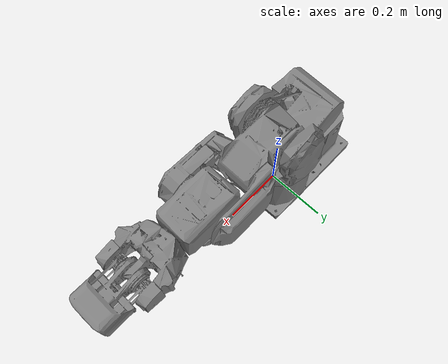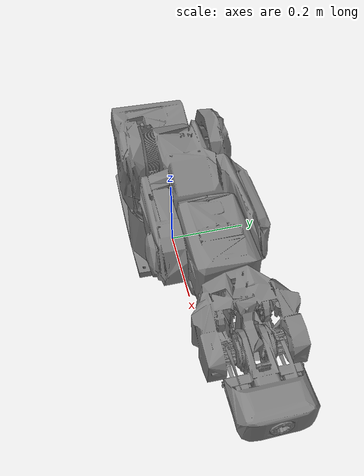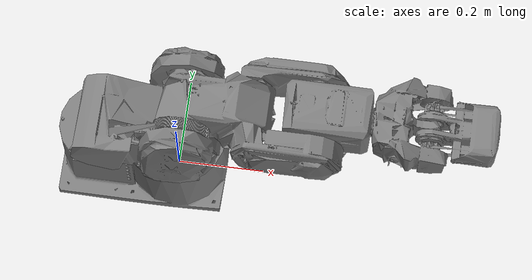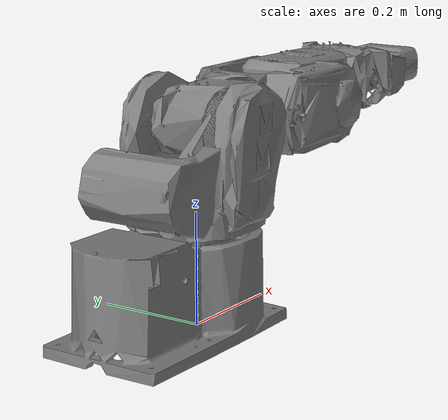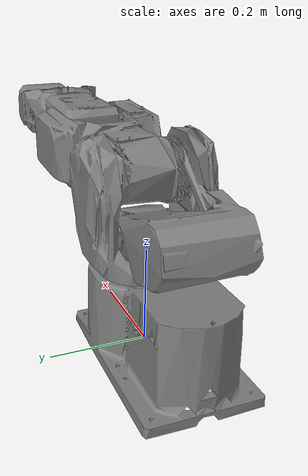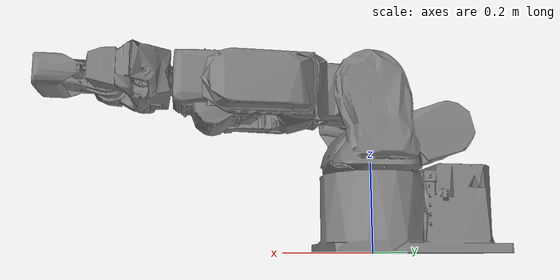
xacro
<?xml version="1.0"?>
<robot xmlns:xacro="http://www.ros.org/wiki/xacro" name="robotarm">

  <xacro:include filename="$(find robotarm_description)/urdf/robotarm_geometry.xacro" />
  <xacro:include filename="$(find robotarm_description)/urdf/robotarm.ros2_control.xacro" />

  <xacro:robotarm_geometry />

  <xacro:robotarm_ros2_control name="MoteusHardwareSystem" use_hardware="$(arg use_hardware)" />

</robot>

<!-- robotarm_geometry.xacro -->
<robot xmlns:xacro="http://www.ros.org/wiki/xacro">
    <xacro:macro name="robotarm_geometry">
        <link name="base">
            <visual name="base_visual">
                <origin xyz="0 0 0" rpy="0 0 0"/>
                <geometry>
                    <mesh filename="package://robotarm_description/meshes/base.stl"/>
                </geometry>
                <material name="base-material">
                    <color rgba="0.5 0.5 0.5 1"/>
                </material>
            </visual>
            <collision name="base_collision_0">
                <origin xyz="0 0 0" rpy="0 0 0"/>
                <geometry>
                    <mesh filename="package://robotarm_description/meshes/collision/base_collision_0.stl"/>
                </geometry>
            </collision>
            <collision name="base_collision_1">
                <origin xyz="0 0 0" rpy="0 0 0"/>
                <geometry>
                    <mesh filename="package://robotarm_description/meshes/collision/base_collision_1.stl"/>
                </geometry>
            </collision>
            <collision name="base_collision_2">
                <origin xyz="0 0 0" rpy="0 0 0"/>
                <geometry>
                    <mesh filename="package://robotarm_description/meshes/collision/base_collision_2.stl"/>
                </geometry>
            </collision>
            <collision name="base_collision_3">
                <origin xyz="0 0 0" rpy="0 0 0"/>
                <geometry>
                    <mesh filename="package://robotarm_description/meshes/collision/base_collision_3.stl"/>
                </geometry>
            </collision>
            <collision name="base_collision_4">
                <origin xyz="0 0 0" rpy="0 0 0"/>
                <geometry>
                    <mesh filename="package://robotarm_description/meshes/collision/base_collision_4.stl"/>
                </geometry>
            </collision>
            <collision name="base_collision_5">
                <origin xyz="0 0 0" rpy="0 0 0"/>
                <geometry>
                    <mesh filename="package://robotarm_description/meshes/collision/base_collision_5.stl"/>
                </geometry>
            </collision>
            <collision name="base_collision_6">
                <origin xyz="0 0 0" rpy="0 0 0"/>
                <geometry>
                    <mesh filename="package://robotarm_description/meshes/collision/base_collision_6.stl"/>
                </geometry>
            </collision>
            <collision name="base_collision_7">
                <origin xyz="0 0 0" rpy="0 0 0"/>
                <geometry>
                    <mesh filename="package://robotarm_description/meshes/collision/base_collision_7.stl"/>
                </geometry>
            </collision>
            <collision name="base_collision_8">
                <origin xyz="0 0 0" rpy="0 0 0"/>
                <geometry>
                    <mesh filename="package://robotarm_description/meshes/collision/base_collision_8.stl"/>
                </geometry>
            </collision>
            <collision name="base_collision_9">
                <origin xyz="0 0 0" rpy="0 0 0"/>
                <geometry>
                    <mesh filename="package://robotarm_description/meshes/collision/base_collision_9.stl"/>
                </geometry>
            </collision>
            <collision name="base_collision_10">
                <origin xyz="0 0 0" rpy="0 0 0"/>
                <geometry>
                    <mesh filename="package://robotarm_description/meshes/collision/base_collision_10.stl"/>
                </geometry>
            </collision>
            <collision name="base_collision_11">
                <origin xyz="0 0 0" rpy="0 0 0"/>
                <geometry>
                    <mesh filename="package://robotarm_description/meshes/collision/base_collision_11.stl"/>
                </geometry>
            </collision>
            <collision name="base_collision_12">
                <origin xyz="0 0 0" rpy="0 0 0"/>
                <geometry>
                    <mesh filename="package://robotarm_description/meshes/collision/base_collision_12.stl"/>
                </geometry>
            </collision>
            <collision name="base_collision_13">
                <origin xyz="0 0 0" rpy="0 0 0"/>
                <geometry>
                    <mesh filename="package://robotarm_description/meshes/collision/base_collision_13.stl"/>
                </geometry>
            </collision>
            <collision name="base_collision_14">
                <origin xyz="0 0 0" rpy="0 0 0"/>
                <geometry>
                    <mesh filename="package://robotarm_description/meshes/collision/base_collision_14.stl"/>
                </geometry>
            </collision>
            <collision name="base_collision_15">
                <origin xyz="0 0 0" rpy="0 0 0"/>
                <geometry>
                    <mesh filename="package://robotarm_description/meshes/collision/base_collision_15.stl"/>
                </geometry>
            </collision>
            <inertial>
                <mass value="3.4827204"/>
                <inertia ixx="0.018868745" iyy="0.04742671" izz="0.049264396" ixy="7.1166324e-05" ixz="0.0045183113" iyz="-9.5548728e-05"/>
                <origin xyz="-0.076932274 0.00034950377 0.093560363" rpy="0 0 0"/>
            </inertial>
        </link>
        <link name="stage1">
            <visual name="stage1_visual">
                <origin xyz="0 0 0" rpy="0 0 0"/>
                <geometry>
                    <mesh filename="package://robotarm_description/meshes/stage1.stl"/>
                </geometry>
                <material name="stage1-material">
                    <color rgba="0.5 0.5 0.5 1"/>
                </material>
            </visual>
            <collision name="stage1_collision_0">
                <origin xyz="0 0 0" rpy="0 0 0"/>
                <geometry>
                    <mesh filename="package://robotarm_description/meshes/collision/stage1_collision_0.stl"/>
                </geometry>
            </collision>
            <collision name="stage1_collision_1">
                <origin xyz="0 0 0" rpy="0 0 0"/>
                <geometry>
                    <mesh filename="package://robotarm_description/meshes/collision/stage1_collision_1.stl"/>
                </geometry>
            </collision>
            <collision name="stage1_collision_2">
                <origin xyz="0 0 0" rpy="0 0 0"/>
                <geometry>
                    <mesh filename="package://robotarm_description/meshes/collision/stage1_collision_2.stl"/>
                </geometry>
            </collision>
            <collision name="stage1_collision_3">
                <origin xyz="0 0 0" rpy="0 0 0"/>
                <geometry>
                    <mesh filename="package://robotarm_description/meshes/collision/stage1_collision_3.stl"/>
                </geometry>
            </collision>
            <collision name="stage1_collision_4">
                <origin xyz="0 0 0" rpy="0 0 0"/>
                <geometry>
                    <mesh filename="package://robotarm_description/meshes/collision/stage1_collision_4.stl"/>
                </geometry>
            </collision>
            <collision name="stage1_collision_5">
                <origin xyz="0 0 0" rpy="0 0 0"/>
                <geometry>
                    <mesh filename="package://robotarm_description/meshes/collision/stage1_collision_5.stl"/>
                </geometry>
            </collision>
            <collision name="stage1_collision_6">
                <origin xyz="0 0 0" rpy="0 0 0"/>
                <geometry>
                    <mesh filename="package://robotarm_description/meshes/collision/stage1_collision_6.stl"/>
                </geometry>
            </collision>
            <collision name="stage1_collision_7">
                <origin xyz="0 0 0" rpy="0 0 0"/>
                <geometry>
                    <mesh filename="package://robotarm_description/meshes/collision/stage1_collision_7.stl"/>
                </geometry>
            </collision>
            <collision name="stage1_collision_8">
                <origin xyz="0 0 0" rpy="0 0 0"/>
                <geometry>
                    <mesh filename="package://robotarm_description/meshes/collision/stage1_collision_8.stl"/>
                </geometry>
            </collision>
            <collision name="stage1_collision_9">
                <origin xyz="0 0 0" rpy="0 0 0"/>
                <geometry>
                    <mesh filename="package://robotarm_description/meshes/collision/stage1_collision_9.stl"/>
                </geometry>
            </collision>
            <collision name="stage1_collision_10">
                <origin xyz="0 0 0" rpy="0 0 0"/>
                <geometry>
                    <mesh filename="package://robotarm_description/meshes/collision/stage1_collision_10.stl"/>
                </geometry>
            </collision>
            <collision name="stage1_collision_11">
                <origin xyz="0 0 0" rpy="0 0 0"/>
                <geometry>
                    <mesh filename="package://robotarm_description/meshes/collision/stage1_collision_11.stl"/>
                </geometry>
            </collision>
            <collision name="stage1_collision_12">
                <origin xyz="0 0 0" rpy="0 0 0"/>
                <geometry>
                    <mesh filename="package://robotarm_description/meshes/collision/stage1_collision_12.stl"/>
                </geometry>
            </collision>
            <collision name="stage1_collision_13">
                <origin xyz="0 0 0" rpy="0 0 0"/>
                <geometry>
                    <mesh filename="package://robotarm_description/meshes/collision/stage1_collision_13.stl"/>
                </geometry>
            </collision>
            <collision name="stage1_collision_14">
                <origin xyz="0 0 0" rpy="0 0 0"/>
                <geometry>
                    <mesh filename="package://robotarm_description/meshes/collision/stage1_collision_14.stl"/>
                </geometry>
            </collision>
            <collision name="stage1_collision_15">
                <origin xyz="0 0 0" rpy="0 0 0"/>
                <geometry>
                    <mesh filename="package://robotarm_description/meshes/collision/stage1_collision_15.stl"/>
                </geometry>
            </collision>
            <inertial>
                <mass value="4.1295223"/>
                <inertia ixx="0.04711987" iyy="0.052758273" izz="0.038779356" ixy="-0.0034076629" ixz="0.0013026889" iyz="0.00137008"/>
                <origin xyz="-0.026966509 -0.0076387808 0.24365317" rpy="0 0 0"/>
            </inertial>
        </link>
        <link name="stage2">
            <visual name="stage2_visual">
                <origin xyz="0 0 0" rpy="0 0 0"/>
                <geometry>
                    <mesh filename="package://robotarm_description/meshes/stage2.stl"/>
                </geometry>
                <material name="stage2-material">
                    <color rgba="0.5 0.5 0.5 1"/>
                </material>
            </visual>
            <collision name="stage2_collision_0">
                <origin xyz="0 0 0" rpy="0 0 0"/>
                <geometry>
                    <mesh filename="package://robotarm_description/meshes/collision/stage2_collision_0.stl"/>
                </geometry>
            </collision>
            <collision name="stage2_collision_1">
                <origin xyz="0 0 0" rpy="0 0 0"/>
                <geometry>
                    <mesh filename="package://robotarm_description/meshes/collision/stage2_collision_1.stl"/>
                </geometry>
            </collision>
            <collision name="stage2_collision_2">
                <origin xyz="0 0 0" rpy="0 0 0"/>
                <geometry>
                    <mesh filename="package://robotarm_description/meshes/collision/stage2_collision_2.stl"/>
                </geometry>
            </collision>
            <collision name="stage2_collision_3">
                <origin xyz="0 0 0" rpy="0 0 0"/>
                <geometry>
                    <mesh filename="package://robotarm_description/meshes/collision/stage2_collision_3.stl"/>
                </geometry>
            </collision>
            <collision name="stage2_collision_4">
                <origin xyz="0 0 0" rpy="0 0 0"/>
                <geometry>
                    <mesh filename="package://robotarm_description/meshes/collision/stage2_collision_4.stl"/>
                </geometry>
            </collision>
            <collision name="stage2_collision_5">
                <origin xyz="0 0 0" rpy="0 0 0"/>
                <geometry>
                    <mesh filename="package://robotarm_description/meshes/collision/stage2_collision_5.stl"/>
                </geometry>
            </collision>
            <collision name="stage2_collision_6">
                <origin xyz="0 0 0" rpy="0 0 0"/>
                <geometry>
                    <mesh filename="package://robotarm_description/meshes/collision/stage2_collision_6.stl"/>
                </geometry>
            </collision>
            <collision name="stage2_collision_7">
                <origin xyz="0 0 0" rpy="0 0 0"/>
                <geometry>
                    <mesh filename="package://robotarm_description/meshes/collision/stage2_collision_7.stl"/>
                </geometry>
            </collision>
            <collision name="stage2_collision_8">
                <origin xyz="0 0 0" rpy="0 0 0"/>
                <geometry>
                    <mesh filename="package://robotarm_description/meshes/collision/stage2_collision_8.stl"/>
                </geometry>
            </collision>
            <collision name="stage2_collision_9">
                <origin xyz="0 0 0" rpy="0 0 0"/>
                <geometry>
                    <mesh filename="package://robotarm_description/meshes/collision/stage2_collision_9.stl"/>
                </geometry>
            </collision>
            <collision name="stage2_collision_10">
                <origin xyz="0 0 0" rpy="0 0 0"/>
                <geometry>
                    <mesh filename="package://robotarm_description/meshes/collision/stage2_collision_10.stl"/>
                </geometry>
            </collision>
            <collision name="stage2_collision_11">
                <origin xyz="0 0 0" rpy="0 0 0"/>
                <geometry>
                    <mesh filename="package://robotarm_description/meshes/collision/stage2_collision_11.stl"/>
                </geometry>
            </collision>
            <collision name="stage2_collision_12">
                <origin xyz="0 0 0" rpy="0 0 0"/>
                <geometry>
                    <mesh filename="package://robotarm_description/meshes/collision/stage2_collision_12.stl"/>
                </geometry>
            </collision>
            <collision name="stage2_collision_13">
                <origin xyz="0 0 0" rpy="0 0 0"/>
                <geometry>
                    <mesh filename="package://robotarm_description/meshes/collision/stage2_collision_13.stl"/>
                </geometry>
            </collision>
            <collision name="stage2_collision_14">
                <origin xyz="0 0 0" rpy="0 0 0"/>
                <geometry>
                    <mesh filename="package://robotarm_description/meshes/collision/stage2_collision_14.stl"/>
                </geometry>
            </collision>
            <collision name="stage2_collision_15">
                <origin xyz="0 0 0" rpy="0 0 0"/>
                <geometry>
                    <mesh filename="package://robotarm_description/meshes/collision/stage2_collision_15.stl"/>
                </geometry>
            </collision>
            <inertial>
                <mass value="2.7406252"/>
                <inertia ixx="0.015630873" iyy="0.045363405" izz="0.035932694" ixy="0.0002099319" ixz="0.0022474095" iyz="-5.4668965e-05"/>
                <origin xyz="0.11594204 0.00017508737 -0.0030457475" rpy="0 0 0"/>
            </inertial>
        </link>
        <link name="stage3">
            <visual name="stage3_visual">
                <origin xyz="0 0 0" rpy="0 0 0"/>
                <geometry>
                    <mesh filename="package://robotarm_description/meshes/stage3.stl"/>
                </geometry>
                <material name="stage3-material">
                    <color rgba="0.5 0.5 0.5 1"/>
                </material>
            </visual>
            <collision name="stage3_collision_0">
                <origin xyz="0 0 0" rpy="0 0 0"/>
                <geometry>
                    <mesh filename="package://robotarm_description/meshes/collision/stage3_collision_0.stl"/>
                </geometry>
            </collision>
            <collision name="stage3_collision_1">
                <origin xyz="0 0 0" rpy="0 0 0"/>
                <geometry>
                    <mesh filename="package://robotarm_description/meshes/collision/stage3_collision_1.stl"/>
                </geometry>
            </collision>
            <collision name="stage3_collision_2">
                <origin xyz="0 0 0" rpy="0 0 0"/>
                <geometry>
                    <mesh filename="package://robotarm_description/meshes/collision/stage3_collision_2.stl"/>
                </geometry>
            </collision>
            <collision name="stage3_collision_3">
                <origin xyz="0 0 0" rpy="0 0 0"/>
                <geometry>
                    <mesh filename="package://robotarm_description/meshes/collision/stage3_collision_3.stl"/>
                </geometry>
            </collision>
            <collision name="stage3_collision_4">
                <origin xyz="0 0 0" rpy="0 0 0"/>
                <geometry>
                    <mesh filename="package://robotarm_description/meshes/collision/stage3_collision_4.stl"/>
                </geometry>
            </collision>
            <collision name="stage3_collision_5">
                <origin xyz="0 0 0" rpy="0 0 0"/>
                <geometry>
                    <mesh filename="package://robotarm_description/meshes/collision/stage3_collision_5.stl"/>
                </geometry>
            </collision>
            <collision name="stage3_collision_6">
                <origin xyz="0 0 0" rpy="0 0 0"/>
                <geometry>
                    <mesh filename="package://robotarm_description/meshes/collision/stage3_collision_6.stl"/>
                </geometry>
            </collision>
            <collision name="stage3_collision_7">
                <origin xyz="0 0 0" rpy="0 0 0"/>
                <geometry>
                    <mesh filename="package://robotarm_description/meshes/collision/stage3_collision_7.stl"/>
                </geometry>
            </collision>
            <collision name="stage3_collision_8">
                <origin xyz="0 0 0" rpy="0 0 0"/>
                <geometry>
                    <mesh filename="package://robotarm_description/meshes/collision/stage3_collision_8.stl"/>
                </geometry>
            </collision>
            <collision name="stage3_collision_9">
                <origin xyz="0 0 0" rpy="0 0 0"/>
                <geometry>
                    <mesh filename="package://robotarm_description/meshes/collision/stage3_collision_9.stl"/>
                </geometry>
            </collision>
            <collision name="stage3_collision_10">
                <origin xyz="0 0 0" rpy="0 0 0"/>
                <geometry>
                    <mesh filename="package://robotarm_description/meshes/collision/stage3_collision_10.stl"/>
                </geometry>
            </collision>
            <collision name="stage3_collision_11">
                <origin xyz="0 0 0" rpy="0 0 0"/>
                <geometry>
                    <mesh filename="package://robotarm_description/meshes/collision/stage3_collision_11.stl"/>
                </geometry>
            </collision>
            <collision name="stage3_collision_12">
                <origin xyz="0 0 0" rpy="0 0 0"/>
                <geometry>
                    <mesh filename="package://robotarm_description/meshes/collision/stage3_collision_12.stl"/>
                </geometry>
            </collision>
            <collision name="stage3_collision_13">
                <origin xyz="0 0 0" rpy="0 0 0"/>
                <geometry>
                    <mesh filename="package://robotarm_description/meshes/collision/stage3_collision_13.stl"/>
                </geometry>
            </collision>
            <collision name="stage3_collision_14">
                <origin xyz="0 0 0" rpy="0 0 0"/>
                <geometry>
                    <mesh filename="package://robotarm_description/meshes/collision/stage3_collision_14.stl"/>
                </geometry>
            </collision>
            <collision name="stage3_collision_15">
                <origin xyz="0 0 0" rpy="0 0 0"/>
                <geometry>
                    <mesh filename="package://robotarm_description/meshes/collision/stage3_collision_15.stl"/>
                </geometry>
            </collision>
            <inertial>
                <mass value="1.6419615"/>
                <inertia ixx="0.0060097679" iyy="0.0079791439" izz="0.0065231995" ixy="-6.4363026e-05" ixz="-0.00012366796" iyz="3.6235248e-05"/>
                <origin xyz="0.012807948 -0.0037012114 -0.0075414714" rpy="0 0 0"/>
            </inertial>
        </link>
        <link name="stage4">
            <visual name="stage4_visual">
                <origin xyz="0 0 0" rpy="0 0 0"/>
                <geometry>
                    <mesh filename="package://robotarm_description/meshes/stage4.stl"/>
                </geometry>
                <material name="stage4-material">
                    <color rgba="0.5 0.5 0.5 1"/>
                </material>
            </visual>
            <collision name="stage4_collision_0">
                <origin xyz="0 0 0" rpy="0 0 0"/>
                <geometry>
                    <mesh filename="package://robotarm_description/meshes/collision/stage4_collision_0.stl"/>
                </geometry>
            </collision>
            <collision name="stage4_collision_1">
                <origin xyz="0 0 0" rpy="0 0 0"/>
                <geometry>
                    <mesh filename="package://robotarm_description/meshes/collision/stage4_collision_1.stl"/>
                </geometry>
            </collision>
            <collision name="stage4_collision_2">
                <origin xyz="0 0 0" rpy="0 0 0"/>
                <geometry>
                    <mesh filename="package://robotarm_description/meshes/collision/stage4_collision_2.stl"/>
                </geometry>
            </collision>
            <collision name="stage4_collision_3">
                <origin xyz="0 0 0" rpy="0 0 0"/>
                <geometry>
                    <mesh filename="package://robotarm_description/meshes/collision/stage4_collision_3.stl"/>
                </geometry>
            </collision>
            <collision name="stage4_collision_4">
                <origin xyz="0 0 0" rpy="0 0 0"/>
                <geometry>
                    <mesh filename="package://robotarm_description/meshes/collision/stage4_collision_4.stl"/>
                </geometry>
            </collision>
            <collision name="stage4_collision_5">
                <origin xyz="0 0 0" rpy="0 0 0"/>
                <geometry>
                    <mesh filename="package://robotarm_description/meshes/collision/stage4_collision_5.stl"/>
                </geometry>
            </collision>
            <collision name="stage4_collision_6">
                <origin xyz="0 0 0" rpy="0 0 0"/>
                <geometry>
                    <mesh filename="package://robotarm_description/meshes/collision/stage4_collision_6.stl"/>
                </geometry>
            </collision>
            <collision name="stage4_collision_7">
                <origin xyz="0 0 0" rpy="0 0 0"/>
                <geometry>
                    <mesh filename="package://robotarm_description/meshes/collision/stage4_collision_7.stl"/>
                </geometry>
            </collision>
            <collision name="stage4_collision_8">
                <origin xyz="0 0 0" rpy="0 0 0"/>
                <geometry>
                    <mesh filename="package://robotarm_description/meshes/collision/stage4_collision_8.stl"/>
                </geometry>
            </collision>
            <collision name="stage4_collision_9">
                <origin xyz="0 0 0" rpy="0 0 0"/>
                <geometry>
                    <mesh filename="package://robotarm_description/meshes/collision/stage4_collision_9.stl"/>
                </geometry>
            </collision>
            <collision name="stage4_collision_10">
                <origin xyz="0 0 0" rpy="0 0 0"/>
                <geometry>
                    <mesh filename="package://robotarm_description/meshes/collision/stage4_collision_10.stl"/>
                </geometry>
            </collision>
            <collision name="stage4_collision_11">
                <origin xyz="0 0 0" rpy="0 0 0"/>
                <geometry>
                    <mesh filename="package://robotarm_description/meshes/collision/stage4_collision_11.stl"/>
                </geometry>
            </collision>
            <collision name="stage4_collision_12">
                <origin xyz="0 0 0" rpy="0 0 0"/>
                <geometry>
                    <mesh filename="package://robotarm_description/meshes/collision/stage4_collision_12.stl"/>
                </geometry>
            </collision>
            <collision name="stage4_collision_13">
                <origin xyz="0 0 0" rpy="0 0 0"/>
                <geometry>
                    <mesh filename="package://robotarm_description/meshes/collision/stage4_collision_13.stl"/>
                </geometry>
            </collision>
            <collision name="stage4_collision_14">
                <origin xyz="0 0 0" rpy="0 0 0"/>
                <geometry>
                    <mesh filename="package://robotarm_description/meshes/collision/stage4_collision_14.stl"/>
                </geometry>
            </collision>
            <collision name="stage4_collision_15">
                <origin xyz="0 0 0" rpy="0 0 0"/>
                <geometry>
                    <mesh filename="package://robotarm_description/meshes/collision/stage4_collision_15.stl"/>
                </geometry>
            </collision>
            <inertial>
                <mass value="1.4258907"/>
                <inertia ixx="0.0073721628" iyy="0.0046687098" izz="0.004720552" ixy="-1.204057e-07" ixz="-5.1924686e-05" iyz="-9.6835076e-06"/>
                <origin xyz="0.00044616577 6.7071049e-05 0.1811569" rpy="0 0 0"/>
            </inertial>
        </link>
        <link name="stage5">
            <visual name="stage5_visual">
                <origin xyz="0 0 0" rpy="0 0 0"/>
                <geometry>
                    <mesh filename="package://robotarm_description/meshes/stage5.stl"/>
                </geometry>
                <material name="stage5-material">
                    <color rgba="0.5 0.5 0.5 1"/>
                </material>
            </visual>
            <collision name="stage5_collision_0">
                <origin xyz="0 0 0" rpy="0 0 0"/>
                <geometry>
                    <mesh filename="package://robotarm_description/meshes/collision/stage5_collision_0.stl"/>
                </geometry>
            </collision>
            <collision name="stage5_collision_1">
                <origin xyz="0 0 0" rpy="0 0 0"/>
                <geometry>
                    <mesh filename="package://robotarm_description/meshes/collision/stage5_collision_1.stl"/>
                </geometry>
            </collision>
            <collision name="stage5_collision_2">
                <origin xyz="0 0 0" rpy="0 0 0"/>
                <geometry>
                    <mesh filename="package://robotarm_description/meshes/collision/stage5_collision_2.stl"/>
                </geometry>
            </collision>
            <collision name="stage5_collision_3">
                <origin xyz="0 0 0" rpy="0 0 0"/>
                <geometry>
                    <mesh filename="package://robotarm_description/meshes/collision/stage5_collision_3.stl"/>
                </geometry>
            </collision>
            <collision name="stage5_collision_4">
                <origin xyz="0 0 0" rpy="0 0 0"/>
                <geometry>
                    <mesh filename="package://robotarm_description/meshes/collision/stage5_collision_4.stl"/>
                </geometry>
            </collision>
            <collision name="stage5_collision_5">
                <origin xyz="0 0 0" rpy="0 0 0"/>
                <geometry>
                    <mesh filename="package://robotarm_description/meshes/collision/stage5_collision_5.stl"/>
                </geometry>
            </collision>
            <collision name="stage5_collision_6">
                <origin xyz="0 0 0" rpy="0 0 0"/>
                <geometry>
                    <mesh filename="package://robotarm_description/meshes/collision/stage5_collision_6.stl"/>
                </geometry>
            </collision>
            <collision name="stage5_collision_7">
                <origin xyz="0 0 0" rpy="0 0 0"/>
                <geometry>
                    <mesh filename="package://robotarm_description/meshes/collision/stage5_collision_7.stl"/>
                </geometry>
            </collision>
            <collision name="stage5_collision_8">
                <origin xyz="0 0 0" rpy="0 0 0"/>
                <geometry>
                    <mesh filename="package://robotarm_description/meshes/collision/stage5_collision_8.stl"/>
                </geometry>
            </collision>
            <collision name="stage5_collision_9">
                <origin xyz="0 0 0" rpy="0 0 0"/>
                <geometry>
                    <mesh filename="package://robotarm_description/meshes/collision/stage5_collision_9.stl"/>
                </geometry>
            </collision>
            <collision name="stage5_collision_10">
                <origin xyz="0 0 0" rpy="0 0 0"/>
                <geometry>
                    <mesh filename="package://robotarm_description/meshes/collision/stage5_collision_10.stl"/>
                </geometry>
            </collision>
            <collision name="stage5_collision_11">
                <origin xyz="0 0 0" rpy="0 0 0"/>
                <geometry>
                    <mesh filename="package://robotarm_description/meshes/collision/stage5_collision_11.stl"/>
                </geometry>
            </collision>
            <collision name="stage5_collision_12">
                <origin xyz="0 0 0" rpy="0 0 0"/>
                <geometry>
                    <mesh filename="package://robotarm_description/meshes/collision/stage5_collision_12.stl"/>
                </geometry>
            </collision>
            <collision name="stage5_collision_13">
                <origin xyz="0 0 0" rpy="0 0 0"/>
                <geometry>
                    <mesh filename="package://robotarm_description/meshes/collision/stage5_collision_13.stl"/>
                </geometry>
            </collision>
            <collision name="stage5_collision_14">
                <origin xyz="0 0 0" rpy="0 0 0"/>
                <geometry>
                    <mesh filename="package://robotarm_description/meshes/collision/stage5_collision_14.stl"/>
                </geometry>
            </collision>
            <collision name="stage5_collision_15">
                <origin xyz="0 0 0" rpy="0 0 0"/>
                <geometry>
                    <mesh filename="package://robotarm_description/meshes/collision/stage5_collision_15.stl"/>
                </geometry>
            </collision>
            <inertial>
                <mass value="0.46131333"/>
                <inertia ixx="0.0015117248" iyy="0.00061441006" izz="0.0011665447" ixy="6.2951363e-07" ixz="-1.5496866e-08" iyz="-7.631966e-05"/>
                <origin xyz="0.00015471698 0.064290847 0.0018382374" rpy="0 0 0"/>
            </inertial>
        </link>
        <link name="stage6">
            <visual name="stage6_visual">
                <origin xyz="0 0 0" rpy="0 0 0"/>
                <geometry>
                    <mesh filename="package://robotarm_description/meshes/stage6.stl"/>
                </geometry>
                <material name="stage6-material">
                    <color rgba="0.5 0.5 0.5 1"/>
                </material>
            </visual>
            <collision name="stage6_collision_0">
                <origin xyz="0 0 0" rpy="0 0 0"/>
                <geometry>
                    <mesh filename="package://robotarm_description/meshes/collision/stage6_collision_0.stl"/>
                </geometry>
            </collision>
            <collision name="stage6_collision_1">
                <origin xyz="0 0 0" rpy="0 0 0"/>
                <geometry>
                    <mesh filename="package://robotarm_description/meshes/collision/stage6_collision_1.stl"/>
                </geometry>
            </collision>
            <collision name="stage6_collision_2">
                <origin xyz="0 0 0" rpy="0 0 0"/>
                <geometry>
                    <mesh filename="package://robotarm_description/meshes/collision/stage6_collision_2.stl"/>
                </geometry>
            </collision>
            <collision name="stage6_collision_3">
                <origin xyz="0 0 0" rpy="0 0 0"/>
                <geometry>
                    <mesh filename="package://robotarm_description/meshes/collision/stage6_collision_3.stl"/>
                </geometry>
            </collision>
            <collision name="stage6_collision_4">
                <origin xyz="0 0 0" rpy="0 0 0"/>
                <geometry>
                    <mesh filename="package://robotarm_description/meshes/collision/stage6_collision_4.stl"/>
                </geometry>
            </collision>
            <collision name="stage6_collision_5">
                <origin xyz="0 0 0" rpy="0 0 0"/>
                <geometry>
                    <mesh filename="package://robotarm_description/meshes/collision/stage6_collision_5.stl"/>
                </geometry>
            </collision>
            <collision name="stage6_collision_6">
                <origin xyz="0 0 0" rpy="0 0 0"/>
                <geometry>
                    <mesh filename="package://robotarm_description/meshes/collision/stage6_collision_6.stl"/>
                </geometry>
            </collision>
            <collision name="stage6_collision_7">
                <origin xyz="0 0 0" rpy="0 0 0"/>
                <geometry>
                    <mesh filename="package://robotarm_description/meshes/collision/stage6_collision_7.stl"/>
                </geometry>
            </collision>
            <collision name="stage6_collision_8">
                <origin xyz="0 0 0" rpy="0 0 0"/>
                <geometry>
                    <mesh filename="package://robotarm_description/meshes/collision/stage6_collision_8.stl"/>
                </geometry>
            </collision>
            <collision name="stage6_collision_9">
                <origin xyz="0 0 0" rpy="0 0 0"/>
                <geometry>
                    <mesh filename="package://robotarm_description/meshes/collision/stage6_collision_9.stl"/>
                </geometry>
            </collision>
            <collision name="stage6_collision_10">
                <origin xyz="0 0 0" rpy="0 0 0"/>
                <geometry>
                    <mesh filename="package://robotarm_description/meshes/collision/stage6_collision_10.stl"/>
                </geometry>
            </collision>
            <collision name="stage6_collision_11">
                <origin xyz="0 0 0" rpy="0 0 0"/>
                <geometry>
                    <mesh filename="package://robotarm_description/meshes/collision/stage6_collision_11.stl"/>
                </geometry>
            </collision>
            <collision name="stage6_collision_12">
                <origin xyz="0 0 0" rpy="0 0 0"/>
                <geometry>
                    <mesh filename="package://robotarm_description/meshes/collision/stage6_collision_12.stl"/>
                </geometry>
            </collision>
            <collision name="stage6_collision_13">
                <origin xyz="0 0 0" rpy="0 0 0"/>
                <geometry>
                    <mesh filename="package://robotarm_description/meshes/collision/stage6_collision_13.stl"/>
                </geometry>
            </collision>
            <collision name="stage6_collision_14">
                <origin xyz="0 0 0" rpy="0 0 0"/>
                <geometry>
                    <mesh filename="package://robotarm_description/meshes/collision/stage6_collision_14.stl"/>
                </geometry>
            </collision>
            <collision name="stage6_collision_15">
                <origin xyz="0 0 0" rpy="0 0 0"/>
                <geometry>
                    <mesh filename="package://robotarm_description/meshes/collision/stage6_collision_15.stl"/>
                </geometry>
            </collision>
            <inertial>
                <mass value="0.12923876"/>
                <inertia ixx="0.00010180441" iyy="0.00010153115" izz="2.5924876e-05" ixy="-2.3311655e-09" ixz="6.6812004e-07" iyz="-2.4387732e-08"/>
                <origin xyz="-0.00014121008 -3.9726634e-06 0.10347552" rpy="0 0 0"/>
            </inertial>
        </link>
        <joint name="axis1" type="revolute">
            <origin xyz="0 0 0" rpy="0 0 0"/>
            <parent link="base"/>
            <child link="stage1"/>
            <axis xyz="0 0 1"/>
            <limit effort="8" velocity="3.14" lower="-3.0543262" upper="3.0543262"/>
            <armature value="0.00693"/>
        </joint>
        <joint name="axis2" type="revolute">
            <origin xyz="0.025 0 0.35" rpy="-1.5707963 0 0"/>
            <parent link="stage1"/>
            <child link="stage2"/>
            <axis xyz="0 0 1"/>
            <limit effort="35" velocity="2.5" lower="-2.7925268" upper="0.34906585"/>
            <armature value="0.178"/>
        </joint>
        <joint name="axis3" type="revolute">
            <origin xyz="0.3 0 0.0185" rpy="0 0 0"/>
            <parent link="stage2"/>
            <child link="stage3"/>
            <axis xyz="0 0 1"/>
            <limit effort="15" velocity="2.5" lower="-2.0943951" upper="2.3212879"/>
            <armature value="0.0254"/>
        </joint>
        <joint name="axis4" type="revolute">
            <origin xyz="0 -0.015 0" rpy="-1.5707963 0 -1.5707963"/>
            <parent link="stage3"/>
            <child link="stage4"/>
            <axis xyz="0 0 1"/>
            <limit effort="5" velocity="2.5" lower="-2.9670597" upper="2.9670597"/>
            <armature value="0.00299"/>
        </joint>
        <joint name="axis5" type="revolute">
            <origin xyz="0 0.002 0.252" rpy="1.5707963 0 0"/>
            <parent link="stage4"/>
            <child link="stage5"/>
            <axis xyz="0 0 1"/>
            <limit effort="4" velocity="2.5" lower="-1.9896753" upper="2.0071286"/>
            <armature value="0.000991"/>
        </joint>
        <joint name="axis6" type="revolute">
            <origin xyz="0 0 0.002" rpy="-1.5707963 0 0"/>
            <parent link="stage5"/>
            <child link="stage6"/>
            <axis xyz="0 0 1"/>
            <limit effort="4" velocity="2.5" lower="-3.0543262" upper="3.0543262"/>
            <armature value="0.000991"/>
        </joint>
        <link name="flange"/>
        <joint name="flange_joint" type="fixed">
            <origin xyz="0 0 0.148" rpy="0 0 0"/>
            <parent link="stage6"/>
            <child link="flange"/>
        </joint>
    </xacro:macro>
</robot>
